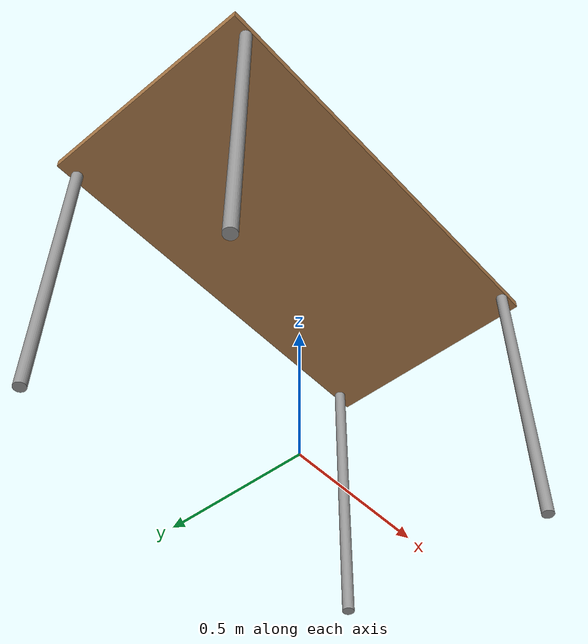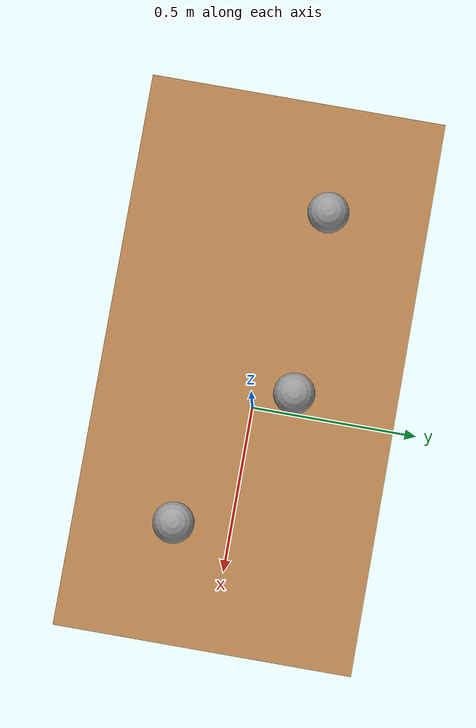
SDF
<?xml version='1.0'?>
<sdf version='1.7'>
  <model name='table_3balls'>
    <link name='link'>
      <self_collide>0</self_collide>
      <enable_wind>0</enable_wind>
      <kinematic>0</kinematic>
      <pose>0 0 0 0 -0 0</pose>
      <visual name='front_left_leg'>
        <pose>0.68 0.38 0.5 0 -0 0</pose>
        <geometry>
          <cylinder>
            <radius>0.02</radius>
            <length>1</length>
          </cylinder>
        </geometry>
        <material>
          <script>
            <uri>file://media/materials/scripts/gazebo.material</uri>
            <name>Gazebo/Grey</name>
          </script>
          <shader type='pixel'/>
        </material>
        <transparency>0</transparency>
        <cast_shadows>1</cast_shadows>
      </visual>
      <visual name='visual1'>
        <pose>0 0 1 0 -0 0</pose>
        <geometry>
          <box>
            <size>1.5 0.8 0.03</size>
          </box>
        </geometry>
        <material>
          <script>
            <uri>file://media/materials/scripts/gazebo.material</uri>
            <name>Gazebo/Wood</name>
          </script>
          <shader type='pixel'/>
        </material>
        <transparency>0</transparency>
        <cast_shadows>1</cast_shadows>
      </visual>
      <visual name='back_right_leg'>
        <pose>-0.68 -0.38 0.5 0 -0 0</pose>
        <geometry>
          <cylinder>
            <radius>0.02</radius>
            <length>1</length>
          </cylinder>
        </geometry>
        <material>
          <script>
            <uri>file://media/materials/scripts/gazebo.material</uri>
            <name>Gazebo/Grey</name>
          </script>
          <shader type='pixel'/>
        </material>
        <transparency>0</transparency>
        <cast_shadows>1</cast_shadows>
      </visual>
      <visual name='back_left_leg'>
        <pose>-0.68 0.38 0.5 0 -0 0</pose>
        <geometry>
          <cylinder>
            <radius>0.02</radius>
            <length>1</length>
          </cylinder>
        </geometry>
        <material>
          <script>
            <uri>file://media/materials/scripts/gazebo.material</uri>
            <name>Gazebo/Grey</name>
          </script>
          <shader type='pixel'/>
        </material>
        <transparency>0</transparency>
        <cast_shadows>1</cast_shadows>
      </visual>
      <visual name='front_right_leg'>
        <pose>0.68 -0.38 0.5 0 -0 0</pose>
        <geometry>
          <cylinder>
            <radius>0.02</radius>
            <length>1</length>
          </cylinder>
        </geometry>
        <material>
          <script>
            <uri>file://media/materials/scripts/gazebo.material</uri>
            <name>Gazebo/Grey</name>
          </script>
          <shader type='pixel'/>
        </material>
        <transparency>0</transparency>
        <cast_shadows>1</cast_shadows>
      </visual>
      <collision name='surface'>
        <laser_retro>0</laser_retro>
        <max_contacts>10</max_contacts>
        <pose>0 0 1 0 -0 0</pose>
        <geometry>
          <box>
            <size>1.5 0.8 0.03</size>
          </box>
        </geometry>
        <surface>
          <friction>
            <ode>
              <mu>0.6</mu>
              <mu2>0.6</mu2>
              <fdir1>0 0 0</fdir1>
              <slip1>0</slip1>
              <slip2>0</slip2>
            </ode>
            <torsional>
              <coefficient>1</coefficient>
              <patch_radius>0</patch_radius>
              <surface_radius>0</surface_radius>
              <use_patch_radius>1</use_patch_radius>
              <ode>
                <slip>0</slip>
              </ode>
            </torsional>
          </friction>
          <bounce>
            <restitution_coefficient>0</restitution_coefficient>
            <threshold>1e+06</threshold>
          </bounce>
          <contact>
            <collide_without_contact>0</collide_without_contact>
            <collide_without_contact_bitmask>1</collide_without_contact_bitmask>
            <collide_bitmask>1</collide_bitmask>
            <ode>
              <soft_cfm>0</soft_cfm>
              <soft_erp>0.2</soft_erp>
              <kp>1e+13</kp>
              <kd>1</kd>
              <max_vel>0.01</max_vel>
              <min_depth>0</min_depth>
            </ode>
            <bullet>
              <split_impulse>1</split_impulse>
              <split_impulse_penetration_threshold>-0.01</split_impulse_penetration_threshold>
              <soft_cfm>0</soft_cfm>
              <soft_erp>0.2</soft_erp>
              <kp>1e+13</kp>
              <kd>1</kd>
            </bullet>
          </contact>
        </surface>
      </collision>
      <collision name='front_left_leg'>
        <laser_retro>0</laser_retro>
        <max_contacts>10</max_contacts>
        <pose>0.68 0.38 0.5 0 -0 0</pose>
        <geometry>
          <cylinder>
            <radius>0.02</radius>
            <length>1</length>
          </cylinder>
        </geometry>
        <surface>
          <friction>
            <ode>
              <mu>1</mu>
              <mu2>1</mu2>
              <fdir1>0 0 0</fdir1>
              <slip1>0</slip1>
              <slip2>0</slip2>
            </ode>
            <torsional>
              <coefficient>1</coefficient>
              <patch_radius>0</patch_radius>
              <surface_radius>0</surface_radius>
              <use_patch_radius>1</use_patch_radius>
              <ode>
                <slip>0</slip>
              </ode>
            </torsional>
          </friction>
          <bounce>
            <restitution_coefficient>0</restitution_coefficient>
            <threshold>1e+06</threshold>
          </bounce>
          <contact>
            <collide_without_contact>0</collide_without_contact>
            <collide_without_contact_bitmask>1</collide_without_contact_bitmask>
            <collide_bitmask>1</collide_bitmask>
            <ode>
              <soft_cfm>0</soft_cfm>
              <soft_erp>0.2</soft_erp>
              <kp>1e+13</kp>
              <kd>1</kd>
              <max_vel>0.01</max_vel>
              <min_depth>0</min_depth>
            </ode>
            <bullet>
              <split_impulse>1</split_impulse>
              <split_impulse_penetration_threshold>-0.01</split_impulse_penetration_threshold>
              <soft_cfm>0</soft_cfm>
              <soft_erp>0.2</soft_erp>
              <kp>1e+13</kp>
              <kd>1</kd>
            </bullet>
          </contact>
        </surface>
      </collision>
      <collision name='front_right_leg'>
        <laser_retro>0</laser_retro>
        <max_contacts>10</max_contacts>
        <pose>0.68 -0.38 0.5 0 -0 0</pose>
        <geometry>
          <cylinder>
            <radius>0.02</radius>
            <length>1</length>
          </cylinder>
        </geometry>
        <surface>
          <friction>
            <ode>
              <mu>1</mu>
              <mu2>1</mu2>
              <fdir1>0 0 0</fdir1>
              <slip1>0</slip1>
              <slip2>0</slip2>
            </ode>
            <torsional>
              <coefficient>1</coefficient>
              <patch_radius>0</patch_radius>
              <surface_radius>0</surface_radius>
              <use_patch_radius>1</use_patch_radius>
              <ode>
                <slip>0</slip>
              </ode>
            </torsional>
          </friction>
          <bounce>
            <restitution_coefficient>0</restitution_coefficient>
            <threshold>1e+06</threshold>
          </bounce>
          <contact>
            <collide_without_contact>0</collide_without_contact>
            <collide_without_contact_bitmask>1</collide_without_contact_bitmask>
            <collide_bitmask>1</collide_bitmask>
            <ode>
              <soft_cfm>0</soft_cfm>
              <soft_erp>0.2</soft_erp>
              <kp>1e+13</kp>
              <kd>1</kd>
              <max_vel>0.01</max_vel>
              <min_depth>0</min_depth>
            </ode>
            <bullet>
              <split_impulse>1</split_impulse>
              <split_impulse_penetration_threshold>-0.01</split_impulse_penetration_threshold>
              <soft_cfm>0</soft_cfm>
              <soft_erp>0.2</soft_erp>
              <kp>1e+13</kp>
              <kd>1</kd>
            </bullet>
          </contact>
        </surface>
      </collision>
      <collision name='back_right_leg'>
        <laser_retro>0</laser_retro>
        <max_contacts>10</max_contacts>
        <pose>-0.68 -0.38 0.5 0 -0 0</pose>
        <geometry>
          <cylinder>
            <radius>0.02</radius>
            <length>1</length>
          </cylinder>
        </geometry>
        <surface>
          <friction>
            <ode>
              <mu>1</mu>
              <mu2>1</mu2>
              <fdir1>0 0 0</fdir1>
              <slip1>0</slip1>
              <slip2>0</slip2>
            </ode>
            <torsional>
              <coefficient>1</coefficient>
              <patch_radius>0</patch_radius>
              <surface_radius>0</surface_radius>
              <use_patch_radius>1</use_patch_radius>
              <ode>
                <slip>0</slip>
              </ode>
            </torsional>
          </friction>
          <bounce>
            <restitution_coefficient>0</restitution_coefficient>
            <threshold>1e+06</threshold>
          </bounce>
          <contact>
            <collide_without_contact>0</collide_without_contact>
            <collide_without_contact_bitmask>1</collide_without_contact_bitmask>
            <collide_bitmask>1</collide_bitmask>
            <ode>
              <soft_cfm>0</soft_cfm>
              <soft_erp>0.2</soft_erp>
              <kp>1e+13</kp>
              <kd>1</kd>
              <max_vel>0.01</max_vel>
              <min_depth>0</min_depth>
            </ode>
            <bullet>
              <split_impulse>1</split_impulse>
              <split_impulse_penetration_threshold>-0.01</split_impulse_penetration_threshold>
              <soft_cfm>0</soft_cfm>
              <soft_erp>0.2</soft_erp>
              <kp>1e+13</kp>
              <kd>1</kd>
            </bullet>
          </contact>
        </surface>
      </collision>
      <collision name='back_left_leg'>
        <laser_retro>0</laser_retro>
        <max_contacts>10</max_contacts>
        <pose>-0.68 0.38 0.5 0 -0 0</pose>
        <geometry>
          <cylinder>
            <radius>0.02</radius>
            <length>1</length>
          </cylinder>
        </geometry>
        <surface>
          <friction>
            <ode>
              <mu>1</mu>
              <mu2>1</mu2>
              <fdir1>0 0 0</fdir1>
              <slip1>0</slip1>
              <slip2>0</slip2>
            </ode>
            <torsional>
              <coefficient>1</coefficient>
              <patch_radius>0</patch_radius>
              <surface_radius>0</surface_radius>
              <use_patch_radius>1</use_patch_radius>
              <ode>
                <slip>0</slip>
              </ode>
            </torsional>
          </friction>
          <bounce>
            <restitution_coefficient>0</restitution_coefficient>
            <threshold>1e+06</threshold>
          </bounce>
          <contact>
            <collide_without_contact>0</collide_without_contact>
            <collide_without_contact_bitmask>1</collide_without_contact_bitmask>
            <collide_bitmask>1</collide_bitmask>
            <ode>
              <soft_cfm>0</soft_cfm>
              <soft_erp>0.2</soft_erp>
              <kp>1e+13</kp>
              <kd>1</kd>
              <max_vel>0.01</max_vel>
              <min_depth>0</min_depth>
            </ode>
            <bullet>
              <split_impulse>1</split_impulse>
              <split_impulse_penetration_threshold>-0.01</split_impulse_penetration_threshold>
              <soft_cfm>0</soft_cfm>
              <soft_erp>0.2</soft_erp>
              <kp>1e+13</kp>
              <kd>1</kd>
            </bullet>
          </contact>
        </surface>
      </collision>
    </link>
    <link name='link_0'>
      <inertial>
        <mass>0.0013865</mass>
        <inertia>
          <ixx>1.72396e-06</ixx>
          <ixy>0</ixy>
          <ixz>0</ixz>
          <iyy>1.72396e-06</iyy>
          <iyz>0</iyz>
          <izz>1.72396e-06</izz>
        </inertia>
        <pose>0 0 0 0 -0 0</pose>
      </inertial>
      <pose>0.432818 -0.130321 1.0814 0 -0 0</pose>
      <visual name='visual'>
        <pose>0 0 0 0 -0 0</pose>
        <geometry>
          <sphere>
            <radius>0.0557538</radius>
          </sphere>
        </geometry>
        <material>
          <lighting>1</lighting>
          <script>
            <uri>file://media/materials/scripts/gazebo.material</uri>
            <name>Gazebo/Grey</name>
          </script>
          <shader type='pixel'/>
        </material>
        <transparency>0</transparency>
        <cast_shadows>1</cast_shadows>
      </visual>
      <collision name='collision'>
        <laser_retro>0</laser_retro>
        <max_contacts>10</max_contacts>
        <pose>0 0 0 0 -0 0</pose>
        <geometry>
          <sphere>
            <radius>0.055754</radius>
          </sphere>
        </geometry>
        <surface>
          <friction>
            <ode>
              <mu>1</mu>
              <mu2>1</mu2>
              <fdir1>0 0 0</fdir1>
              <slip1>0</slip1>
              <slip2>0</slip2>
            </ode>
            <torsional>
              <coefficient>1</coefficient>
              <patch_radius>0</patch_radius>
              <surface_radius>0</surface_radius>
              <use_patch_radius>1</use_patch_radius>
              <ode>
                <slip>0</slip>
              </ode>
            </torsional>
          </friction>
          <bounce>
            <restitution_coefficient>0</restitution_coefficient>
            <threshold>1e+06</threshold>
          </bounce>
          <contact>
            <collide_without_contact>0</collide_without_contact>
            <collide_without_contact_bitmask>1</collide_without_contact_bitmask>
            <collide_bitmask>1</collide_bitmask>
            <ode>
              <soft_cfm>0</soft_cfm>
              <soft_erp>0.2</soft_erp>
              <kp>1e+13</kp>
              <kd>1</kd>
              <max_vel>0.01</max_vel>
              <min_depth>0</min_depth>
            </ode>
            <bullet>
              <split_impulse>1</split_impulse>
              <split_impulse_penetration_threshold>-0.01</split_impulse_penetration_threshold>
              <soft_cfm>0</soft_cfm>
              <soft_erp>0.2</soft_erp>
              <kp>1e+13</kp>
              <kd>1</kd>
            </bullet>
          </contact>
        </surface>
      </collision>
    </link>
    <link name='link_0_clone'>
      <inertial>
        <mass>0.0013865</mass>
        <inertia>
          <ixx>1.72396e-06</ixx>
          <ixy>0</ixy>
          <ixz>0</ixz>
          <iyy>1.72396e-06</iyy>
          <iyz>0</iyz>
          <izz>1.72396e-06</izz>
        </inertia>
        <pose>0 0 0 0 -0 0</pose>
      </inertial>
      <pose>-0.450537 0.130503 1.0814 0 -0 0</pose>
      <visual name='visual'>
        <pose>0 0 0 0 -0 0</pose>
        <geometry>
          <sphere>
            <radius>0.0557538</radius>
          </sphere>
        </geometry>
        <material>
          <lighting>1</lighting>
          <script>
            <uri>file://media/materials/scripts/gazebo.material</uri>
            <name>Gazebo/Grey</name>
          </script>
          <shader type='pixel'/>
        </material>
        <transparency>0</transparency>
        <cast_shadows>1</cast_shadows>
      </visual>
      <collision name='collision'>
        <laser_retro>0</laser_retro>
        <max_contacts>10</max_contacts>
        <pose>0 0 0 0 -0 0</pose>
        <geometry>
          <sphere>
            <radius>0.055754</radius>
          </sphere>
        </geometry>
        <surface>
          <friction>
            <ode>
              <mu>1</mu>
              <mu2>1</mu2>
              <fdir1>0 0 0</fdir1>
              <slip1>0</slip1>
              <slip2>0</slip2>
            </ode>
            <torsional>
              <coefficient>1</coefficient>
              <patch_radius>0</patch_radius>
              <surface_radius>0</surface_radius>
              <use_patch_radius>1</use_patch_radius>
              <ode>
                <slip>0</slip>
              </ode>
            </torsional>
          </friction>
          <bounce>
            <restitution_coefficient>0</restitution_coefficient>
            <threshold>1e+06</threshold>
          </bounce>
          <contact>
            <collide_without_contact>0</collide_without_contact>
            <collide_without_contact_bitmask>1</collide_without_contact_bitmask>
            <collide_bitmask>1</collide_bitmask>
            <ode>
              <soft_cfm>0</soft_cfm>
              <soft_erp>0.2</soft_erp>
              <kp>1e+13</kp>
              <kd>1</kd>
              <max_vel>0.01</max_vel>
              <min_depth>0</min_depth>
            </ode>
            <bullet>
              <split_impulse>1</split_impulse>
              <split_impulse_penetration_threshold>-0.01</split_impulse_penetration_threshold>
              <soft_cfm>0</soft_cfm>
              <soft_erp>0.2</soft_erp>
              <kp>1e+13</kp>
              <kd>1</kd>
            </bullet>
          </contact>
        </surface>
      </collision>
    </link>
    <link name='link_0_clone_0'>
      <inertial>
        <mass>0.0013865</mass>
        <inertia>
          <ixx>1.72396e-06</ixx>
          <ixy>0</ixy>
          <ixz>0</ixz>
          <iyy>1.72396e-06</iyy>
          <iyz>0</iyz>
          <izz>1.72396e-06</izz>
        </inertia>
        <pose>0 0 0 0 -0 0</pose>
      </inertial>
      <pose>0.041991 0.123994 1.0814 0 -0 0</pose>
      <visual name='visual'>
        <pose>0 0 0 0 -0 0</pose>
        <geometry>
          <sphere>
            <radius>0.0557538</radius>
          </sphere>
        </geometry>
        <material>
          <lighting>1</lighting>
          <script>
            <uri>file://media/materials/scripts/gazebo.material</uri>
            <name>Gazebo/Grey</name>
          </script>
          <shader type='pixel'/>
        </material>
        <transparency>0</transparency>
        <cast_shadows>1</cast_shadows>
      </visual>
      <collision name='collision'>
        <laser_retro>0</laser_retro>
        <max_contacts>10</max_contacts>
        <pose>0 0 0 0 -0 0</pose>
        <geometry>
          <sphere>
            <radius>0.055754</radius>
          </sphere>
        </geometry>
        <surface>
          <friction>
            <ode>
              <mu>1</mu>
              <mu2>1</mu2>
              <fdir1>0 0 0</fdir1>
              <slip1>0</slip1>
              <slip2>0</slip2>
            </ode>
            <torsional>
              <coefficient>1</coefficient>
              <patch_radius>0</patch_radius>
              <surface_radius>0</surface_radius>
              <use_patch_radius>1</use_patch_radius>
              <ode>
                <slip>0</slip>
              </ode>
            </torsional>
          </friction>
          <bounce>
            <restitution_coefficient>0</restitution_coefficient>
            <threshold>1e+06</threshold>
          </bounce>
          <contact>
            <collide_without_contact>0</collide_without_contact>
            <collide_without_contact_bitmask>1</collide_without_contact_bitmask>
            <collide_bitmask>1</collide_bitmask>
            <ode>
              <soft_cfm>0</soft_cfm>
              <soft_erp>0.2</soft_erp>
              <kp>1e+13</kp>
              <kd>1</kd>
              <max_vel>0.01</max_vel>
              <min_depth>0</min_depth>
            </ode>
            <bullet>
              <split_impulse>1</split_impulse>
              <split_impulse_penetration_threshold>-0.01</split_impulse_penetration_threshold>
              <soft_cfm>0</soft_cfm>
              <soft_erp>0.2</soft_erp>
              <kp>1e+13</kp>
              <kd>1</kd>
            </bullet>
          </contact>
        </surface>
      </collision>
    </link>
    <static>1</static>
    <allow_auto_disable>1</allow_auto_disable>
  </model>
</sdf>
